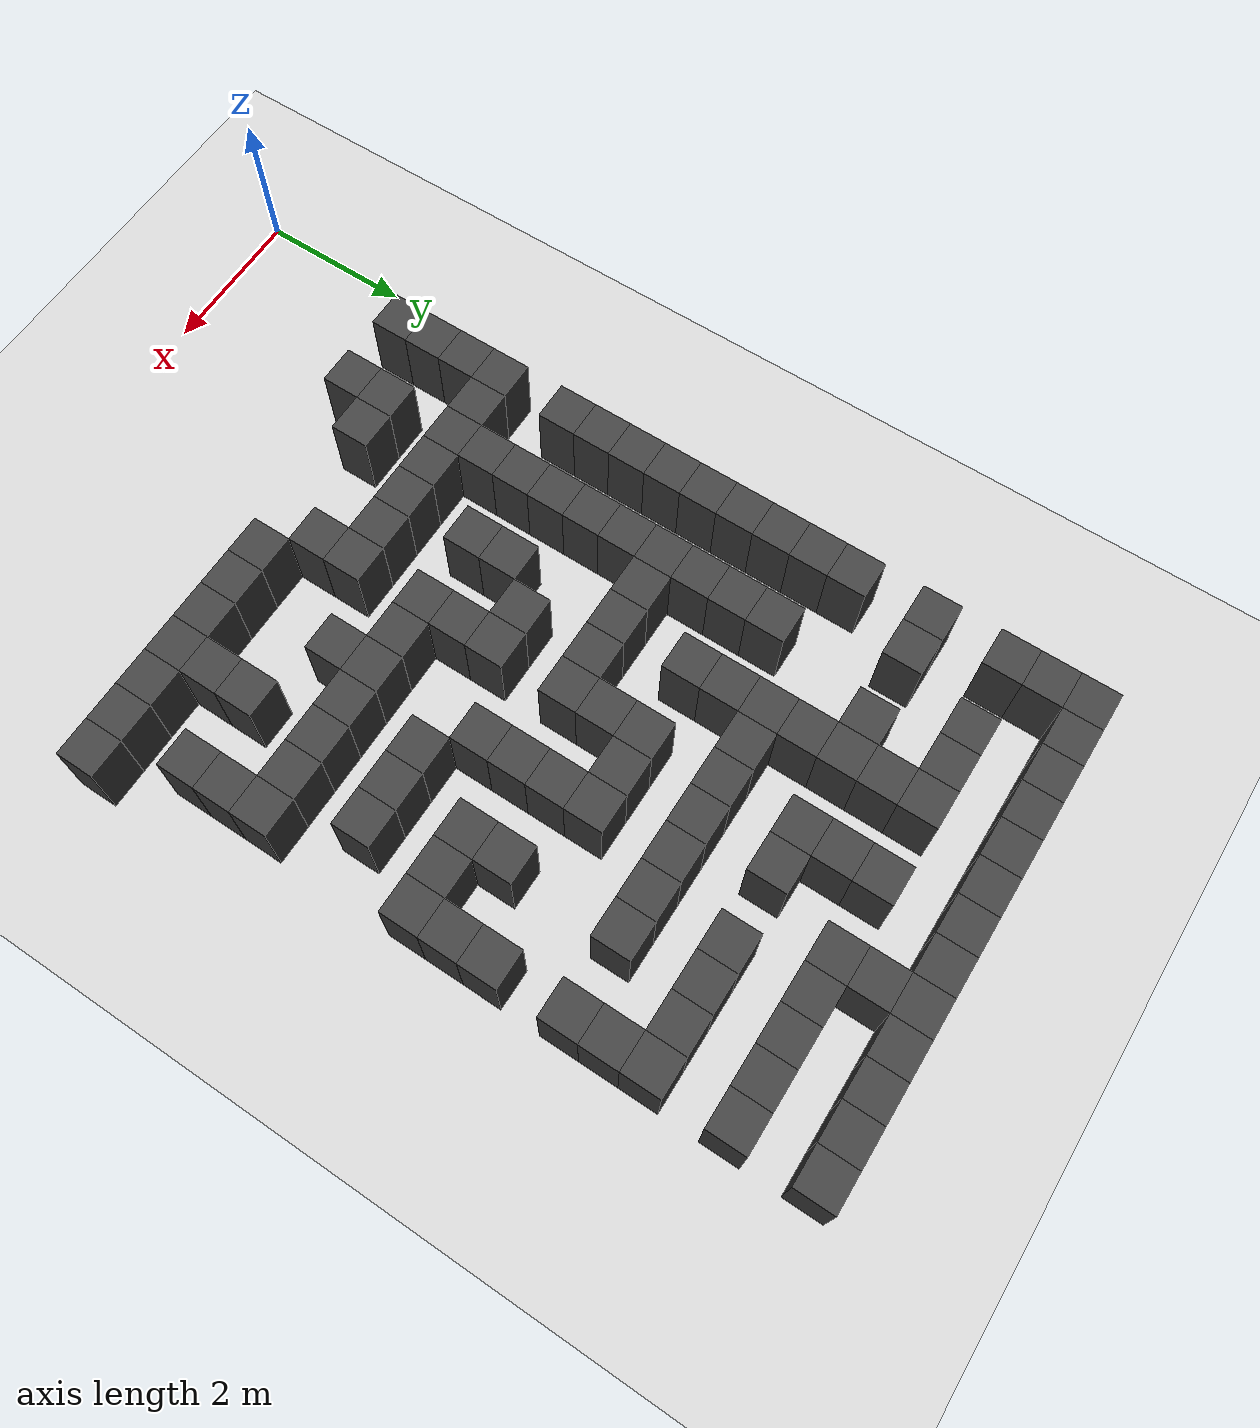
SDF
<sdf version="1.7">
 <world name="map_16603">
  <model name="ground_plane">
   <static>true</static>
   <link name="link">
    <collision name="collision">
     <geometry><plane><normal>0 0 1</normal><size>200 200</size></plane></geometry>
    </collision>
    <visual name="visual">
     <geometry><plane><normal>0 0 1</normal><size>200 200</size></plane></geometry>
     <material><ambient>0.8 0.8 0.8 1</ambient><diffuse>0.8 0.8 0.8 1</diffuse></material>
    </visual>
   </link>
  </model>
  <model name="maze_environment">
   <static>true</static>
   <link name="wall_26">
    <pose>0.750 12.250 0.500 0 0 0</pose>
    <collision name="col"><geometry><box><size>0.5 0.5 1.0</size></box></geometry></collision>
    <visual name="vis">
     <geometry><box><size>0.5 0.5 1.0</size></box></geometry>
     <material><ambient>0.15 0.15 0.15 1</ambient><diffuse>0.25 0.25 0.25 1</diffuse></material>
    </visual>
   </link>
   <link name="wall_27">
    <pose>1.250 12.250 0.500 0 0 0</pose>
    <collision name="col"><geometry><box><size>0.5 0.5 1.0</size></box></geometry></collision>
    <visual name="vis">
     <geometry><box><size>0.5 0.5 1.0</size></box></geometry>
     <material><ambient>0.15 0.15 0.15 1</ambient><diffuse>0.25 0.25 0.25 1</diffuse></material>
    </visual>
   </link>
   <link name="wall_28">
    <pose>1.750 12.250 0.500 0 0 0</pose>
    <collision name="col"><geometry><box><size>0.5 0.5 1.0</size></box></geometry></collision>
    <visual name="vis">
     <geometry><box><size>0.5 0.5 1.0</size></box></geometry>
     <material><ambient>0.15 0.15 0.15 1</ambient><diffuse>0.25 0.25 0.25 1</diffuse></material>
    </visual>
   </link>
   <link name="wall_29">
    <pose>2.250 12.250 0.500 0 0 0</pose>
    <collision name="col"><geometry><box><size>0.5 0.5 1.0</size></box></geometry></collision>
    <visual name="vis">
     <geometry><box><size>0.5 0.5 1.0</size></box></geometry>
     <material><ambient>0.15 0.15 0.15 1</ambient><diffuse>0.25 0.25 0.25 1</diffuse></material>
    </visual>
   </link>
   <link name="wall_30">
    <pose>2.750 12.250 0.500 0 0 0</pose>
    <collision name="col"><geometry><box><size>0.5 0.5 1.0</size></box></geometry></collision>
    <visual name="vis">
     <geometry><box><size>0.5 0.5 1.0</size></box></geometry>
     <material><ambient>0.15 0.15 0.15 1</ambient><diffuse>0.25 0.25 0.25 1</diffuse></material>
    </visual>
   </link>
   <link name="wall_31">
    <pose>3.250 12.250 0.500 0 0 0</pose>
    <collision name="col"><geometry><box><size>0.5 0.5 1.0</size></box></geometry></collision>
    <visual name="vis">
     <geometry><box><size>0.5 0.5 1.0</size></box></geometry>
     <material><ambient>0.15 0.15 0.15 1</ambient><diffuse>0.25 0.25 0.25 1</diffuse></material>
    </visual>
   </link>
   <link name="wall_32">
    <pose>3.750 12.250 0.500 0 0 0</pose>
    <collision name="col"><geometry><box><size>0.5 0.5 1.0</size></box></geometry></collision>
    <visual name="vis">
     <geometry><box><size>0.5 0.5 1.0</size></box></geometry>
     <material><ambient>0.15 0.15 0.15 1</ambient><diffuse>0.25 0.25 0.25 1</diffuse></material>
    </visual>
   </link>
   <link name="wall_33">
    <pose>4.250 12.250 0.500 0 0 0</pose>
    <collision name="col"><geometry><box><size>0.5 0.5 1.0</size></box></geometry></collision>
    <visual name="vis">
     <geometry><box><size>0.5 0.5 1.0</size></box></geometry>
     <material><ambient>0.15 0.15 0.15 1</ambient><diffuse>0.25 0.25 0.25 1</diffuse></material>
    </visual>
   </link>
   <link name="wall_34">
    <pose>4.750 12.250 0.500 0 0 0</pose>
    <collision name="col"><geometry><box><size>0.5 0.5 1.0</size></box></geometry></collision>
    <visual name="vis">
     <geometry><box><size>0.5 0.5 1.0</size></box></geometry>
     <material><ambient>0.15 0.15 0.15 1</ambient><diffuse>0.25 0.25 0.25 1</diffuse></material>
    </visual>
   </link>
   <link name="wall_35">
    <pose>5.250 12.250 0.500 0 0 0</pose>
    <collision name="col"><geometry><box><size>0.5 0.5 1.0</size></box></geometry></collision>
    <visual name="vis">
     <geometry><box><size>0.5 0.5 1.0</size></box></geometry>
     <material><ambient>0.15 0.15 0.15 1</ambient><diffuse>0.25 0.25 0.25 1</diffuse></material>
    </visual>
   </link>
   <link name="wall_36">
    <pose>5.750 12.250 0.500 0 0 0</pose>
    <collision name="col"><geometry><box><size>0.5 0.5 1.0</size></box></geometry></collision>
    <visual name="vis">
     <geometry><box><size>0.5 0.5 1.0</size></box></geometry>
     <material><ambient>0.15 0.15 0.15 1</ambient><diffuse>0.25 0.25 0.25 1</diffuse></material>
    </visual>
   </link>
   <link name="wall_37">
    <pose>6.250 12.250 0.500 0 0 0</pose>
    <collision name="col"><geometry><box><size>0.5 0.5 1.0</size></box></geometry></collision>
    <visual name="vis">
     <geometry><box><size>0.5 0.5 1.0</size></box></geometry>
     <material><ambient>0.15 0.15 0.15 1</ambient><diffuse>0.25 0.25 0.25 1</diffuse></material>
    </visual>
   </link>
   <link name="wall_38">
    <pose>6.750 12.250 0.500 0 0 0</pose>
    <collision name="col"><geometry><box><size>0.5 0.5 1.0</size></box></geometry></collision>
    <visual name="vis">
     <geometry><box><size>0.5 0.5 1.0</size></box></geometry>
     <material><ambient>0.15 0.15 0.15 1</ambient><diffuse>0.25 0.25 0.25 1</diffuse></material>
    </visual>
   </link>
   <link name="wall_54">
    <pose>0.750 11.750 0.500 0 0 0</pose>
    <collision name="col"><geometry><box><size>0.5 0.5 1.0</size></box></geometry></collision>
    <visual name="vis">
     <geometry><box><size>0.5 0.5 1.0</size></box></geometry>
     <material><ambient>0.15 0.15 0.15 1</ambient><diffuse>0.25 0.25 0.25 1</diffuse></material>
    </visual>
   </link>
   <link name="wall_55">
    <pose>4.750 11.750 0.500 0 0 0</pose>
    <collision name="col"><geometry><box><size>0.5 0.5 1.0</size></box></geometry></collision>
    <visual name="vis">
     <geometry><box><size>0.5 0.5 1.0</size></box></geometry>
     <material><ambient>0.15 0.15 0.15 1</ambient><diffuse>0.25 0.25 0.25 1</diffuse></material>
    </visual>
   </link>
   <link name="wall_75">
    <pose>0.750 11.250 0.500 0 0 0</pose>
    <collision name="col"><geometry><box><size>0.5 0.5 1.0</size></box></geometry></collision>
    <visual name="vis">
     <geometry><box><size>0.5 0.5 1.0</size></box></geometry>
     <material><ambient>0.15 0.15 0.15 1</ambient><diffuse>0.25 0.25 0.25 1</diffuse></material>
    </visual>
   </link>
   <link name="wall_76">
    <pose>1.750 11.250 0.500 0 0 0</pose>
    <collision name="col"><geometry><box><size>0.5 0.5 1.0</size></box></geometry></collision>
    <visual name="vis">
     <geometry><box><size>0.5 0.5 1.0</size></box></geometry>
     <material><ambient>0.15 0.15 0.15 1</ambient><diffuse>0.25 0.25 0.25 1</diffuse></material>
    </visual>
   </link>
   <link name="wall_77">
    <pose>2.250 11.250 0.500 0 0 0</pose>
    <collision name="col"><geometry><box><size>0.5 0.5 1.0</size></box></geometry></collision>
    <visual name="vis">
     <geometry><box><size>0.5 0.5 1.0</size></box></geometry>
     <material><ambient>0.15 0.15 0.15 1</ambient><diffuse>0.25 0.25 0.25 1</diffuse></material>
    </visual>
   </link>
   <link name="wall_78">
    <pose>2.750 11.250 0.500 0 0 0</pose>
    <collision name="col"><geometry><box><size>0.5 0.5 1.0</size></box></geometry></collision>
    <visual name="vis">
     <geometry><box><size>0.5 0.5 1.0</size></box></geometry>
     <material><ambient>0.15 0.15 0.15 1</ambient><diffuse>0.25 0.25 0.25 1</diffuse></material>
    </visual>
   </link>
   <link name="wall_79">
    <pose>3.750 11.250 0.500 0 0 0</pose>
    <collision name="col"><geometry><box><size>0.5 0.5 1.0</size></box></geometry></collision>
    <visual name="vis">
     <geometry><box><size>0.5 0.5 1.0</size></box></geometry>
     <material><ambient>0.15 0.15 0.15 1</ambient><diffuse>0.25 0.25 0.25 1</diffuse></material>
    </visual>
   </link>
   <link name="wall_80">
    <pose>4.750 11.250 0.500 0 0 0</pose>
    <collision name="col"><geometry><box><size>0.5 0.5 1.0</size></box></geometry></collision>
    <visual name="vis">
     <geometry><box><size>0.5 0.5 1.0</size></box></geometry>
     <material><ambient>0.15 0.15 0.15 1</ambient><diffuse>0.25 0.25 0.25 1</diffuse></material>
    </visual>
   </link>
   <link name="wall_81">
    <pose>5.250 11.250 0.500 0 0 0</pose>
    <collision name="col"><geometry><box><size>0.5 0.5 1.0</size></box></geometry></collision>
    <visual name="vis">
     <geometry><box><size>0.5 0.5 1.0</size></box></geometry>
     <material><ambient>0.15 0.15 0.15 1</ambient><diffuse>0.25 0.25 0.25 1</diffuse></material>
    </visual>
   </link>
   <link name="wall_82">
    <pose>5.750 11.250 0.500 0 0 0</pose>
    <collision name="col"><geometry><box><size>0.5 0.5 1.0</size></box></geometry></collision>
    <visual name="vis">
     <geometry><box><size>0.5 0.5 1.0</size></box></geometry>
     <material><ambient>0.15 0.15 0.15 1</ambient><diffuse>0.25 0.25 0.25 1</diffuse></material>
    </visual>
   </link>
   <link name="wall_83">
    <pose>6.250 11.250 0.500 0 0 0</pose>
    <collision name="col"><geometry><box><size>0.5 0.5 1.0</size></box></geometry></collision>
    <visual name="vis">
     <geometry><box><size>0.5 0.5 1.0</size></box></geometry>
     <material><ambient>0.15 0.15 0.15 1</ambient><diffuse>0.25 0.25 0.25 1</diffuse></material>
    </visual>
   </link>
   <link name="wall_84">
    <pose>6.750 11.250 0.500 0 0 0</pose>
    <collision name="col"><geometry><box><size>0.5 0.5 1.0</size></box></geometry></collision>
    <visual name="vis">
     <geometry><box><size>0.5 0.5 1.0</size></box></geometry>
     <material><ambient>0.15 0.15 0.15 1</ambient><diffuse>0.25 0.25 0.25 1</diffuse></material>
    </visual>
   </link>
   <link name="wall_101">
    <pose>2.750 10.750 0.500 0 0 0</pose>
    <collision name="col"><geometry><box><size>0.5 0.5 1.0</size></box></geometry></collision>
    <visual name="vis">
     <geometry><box><size>0.5 0.5 1.0</size></box></geometry>
     <material><ambient>0.15 0.15 0.15 1</ambient><diffuse>0.25 0.25 0.25 1</diffuse></material>
    </visual>
   </link>
   <link name="wall_102">
    <pose>3.750 10.750 0.500 0 0 0</pose>
    <collision name="col"><geometry><box><size>0.5 0.5 1.0</size></box></geometry></collision>
    <visual name="vis">
     <geometry><box><size>0.5 0.5 1.0</size></box></geometry>
     <material><ambient>0.15 0.15 0.15 1</ambient><diffuse>0.25 0.25 0.25 1</diffuse></material>
    </visual>
   </link>
   <link name="wall_120">
    <pose>0.750 10.250 0.500 0 0 0</pose>
    <collision name="col"><geometry><box><size>0.5 0.5 1.0</size></box></geometry></collision>
    <visual name="vis">
     <geometry><box><size>0.5 0.5 1.0</size></box></geometry>
     <material><ambient>0.15 0.15 0.15 1</ambient><diffuse>0.25 0.25 0.25 1</diffuse></material>
    </visual>
   </link>
   <link name="wall_121">
    <pose>1.250 10.250 0.500 0 0 0</pose>
    <collision name="col"><geometry><box><size>0.5 0.5 1.0</size></box></geometry></collision>
    <visual name="vis">
     <geometry><box><size>0.5 0.5 1.0</size></box></geometry>
     <material><ambient>0.15 0.15 0.15 1</ambient><diffuse>0.25 0.25 0.25 1</diffuse></material>
    </visual>
   </link>
   <link name="wall_122">
    <pose>2.250 10.250 0.500 0 0 0</pose>
    <collision name="col"><geometry><box><size>0.5 0.5 1.0</size></box></geometry></collision>
    <visual name="vis">
     <geometry><box><size>0.5 0.5 1.0</size></box></geometry>
     <material><ambient>0.15 0.15 0.15 1</ambient><diffuse>0.25 0.25 0.25 1</diffuse></material>
    </visual>
   </link>
   <link name="wall_123">
    <pose>2.750 10.250 0.500 0 0 0</pose>
    <collision name="col"><geometry><box><size>0.5 0.5 1.0</size></box></geometry></collision>
    <visual name="vis">
     <geometry><box><size>0.5 0.5 1.0</size></box></geometry>
     <material><ambient>0.15 0.15 0.15 1</ambient><diffuse>0.25 0.25 0.25 1</diffuse></material>
    </visual>
   </link>
   <link name="wall_124">
    <pose>3.750 10.250 0.500 0 0 0</pose>
    <collision name="col"><geometry><box><size>0.5 0.5 1.0</size></box></geometry></collision>
    <visual name="vis">
     <geometry><box><size>0.5 0.5 1.0</size></box></geometry>
     <material><ambient>0.15 0.15 0.15 1</ambient><diffuse>0.25 0.25 0.25 1</diffuse></material>
    </visual>
   </link>
   <link name="wall_125">
    <pose>4.250 10.250 0.500 0 0 0</pose>
    <collision name="col"><geometry><box><size>0.5 0.5 1.0</size></box></geometry></collision>
    <visual name="vis">
     <geometry><box><size>0.5 0.5 1.0</size></box></geometry>
     <material><ambient>0.15 0.15 0.15 1</ambient><diffuse>0.25 0.25 0.25 1</diffuse></material>
    </visual>
   </link>
   <link name="wall_126">
    <pose>5.250 10.250 0.500 0 0 0</pose>
    <collision name="col"><geometry><box><size>0.5 0.5 1.0</size></box></geometry></collision>
    <visual name="vis">
     <geometry><box><size>0.5 0.5 1.0</size></box></geometry>
     <material><ambient>0.15 0.15 0.15 1</ambient><diffuse>0.25 0.25 0.25 1</diffuse></material>
    </visual>
   </link>
   <link name="wall_127">
    <pose>5.750 10.250 0.500 0 0 0</pose>
    <collision name="col"><geometry><box><size>0.5 0.5 1.0</size></box></geometry></collision>
    <visual name="vis">
     <geometry><box><size>0.5 0.5 1.0</size></box></geometry>
     <material><ambient>0.15 0.15 0.15 1</ambient><diffuse>0.25 0.25 0.25 1</diffuse></material>
    </visual>
   </link>
   <link name="wall_128">
    <pose>6.250 10.250 0.500 0 0 0</pose>
    <collision name="col"><geometry><box><size>0.5 0.5 1.0</size></box></geometry></collision>
    <visual name="vis">
     <geometry><box><size>0.5 0.5 1.0</size></box></geometry>
     <material><ambient>0.15 0.15 0.15 1</ambient><diffuse>0.25 0.25 0.25 1</diffuse></material>
    </visual>
   </link>
   <link name="wall_129">
    <pose>6.750 10.250 0.500 0 0 0</pose>
    <collision name="col"><geometry><box><size>0.5 0.5 1.0</size></box></geometry></collision>
    <visual name="vis">
     <geometry><box><size>0.5 0.5 1.0</size></box></geometry>
     <material><ambient>0.15 0.15 0.15 1</ambient><diffuse>0.25 0.25 0.25 1</diffuse></material>
    </visual>
   </link>
   <link name="wall_146">
    <pose>2.750 9.750 0.500 0 0 0</pose>
    <collision name="col"><geometry><box><size>0.5 0.5 1.0</size></box></geometry></collision>
    <visual name="vis">
     <geometry><box><size>0.5 0.5 1.0</size></box></geometry>
     <material><ambient>0.15 0.15 0.15 1</ambient><diffuse>0.25 0.25 0.25 1</diffuse></material>
    </visual>
   </link>
   <link name="wall_147">
    <pose>6.750 9.750 0.500 0 0 0</pose>
    <collision name="col"><geometry><box><size>0.5 0.5 1.0</size></box></geometry></collision>
    <visual name="vis">
     <geometry><box><size>0.5 0.5 1.0</size></box></geometry>
     <material><ambient>0.15 0.15 0.15 1</ambient><diffuse>0.25 0.25 0.25 1</diffuse></material>
    </visual>
   </link>
   <link name="wall_168">
    <pose>0.750 9.250 0.500 0 0 0</pose>
    <collision name="col"><geometry><box><size>0.5 0.5 1.0</size></box></geometry></collision>
    <visual name="vis">
     <geometry><box><size>0.5 0.5 1.0</size></box></geometry>
     <material><ambient>0.15 0.15 0.15 1</ambient><diffuse>0.25 0.25 0.25 1</diffuse></material>
    </visual>
   </link>
   <link name="wall_169">
    <pose>2.750 9.250 0.500 0 0 0</pose>
    <collision name="col"><geometry><box><size>0.5 0.5 1.0</size></box></geometry></collision>
    <visual name="vis">
     <geometry><box><size>0.5 0.5 1.0</size></box></geometry>
     <material><ambient>0.15 0.15 0.15 1</ambient><diffuse>0.25 0.25 0.25 1</diffuse></material>
    </visual>
   </link>
   <link name="wall_170">
    <pose>3.250 9.250 0.500 0 0 0</pose>
    <collision name="col"><geometry><box><size>0.5 0.5 1.0</size></box></geometry></collision>
    <visual name="vis">
     <geometry><box><size>0.5 0.5 1.0</size></box></geometry>
     <material><ambient>0.15 0.15 0.15 1</ambient><diffuse>0.25 0.25 0.25 1</diffuse></material>
    </visual>
   </link>
   <link name="wall_171">
    <pose>3.750 9.250 0.500 0 0 0</pose>
    <collision name="col"><geometry><box><size>0.5 0.5 1.0</size></box></geometry></collision>
    <visual name="vis">
     <geometry><box><size>0.5 0.5 1.0</size></box></geometry>
     <material><ambient>0.15 0.15 0.15 1</ambient><diffuse>0.25 0.25 0.25 1</diffuse></material>
    </visual>
   </link>
   <link name="wall_172">
    <pose>4.250 9.250 0.500 0 0 0</pose>
    <collision name="col"><geometry><box><size>0.5 0.5 1.0</size></box></geometry></collision>
    <visual name="vis">
     <geometry><box><size>0.5 0.5 1.0</size></box></geometry>
     <material><ambient>0.15 0.15 0.15 1</ambient><diffuse>0.25 0.25 0.25 1</diffuse></material>
    </visual>
   </link>
   <link name="wall_173">
    <pose>4.750 9.250 0.500 0 0 0</pose>
    <collision name="col"><geometry><box><size>0.5 0.5 1.0</size></box></geometry></collision>
    <visual name="vis">
     <geometry><box><size>0.5 0.5 1.0</size></box></geometry>
     <material><ambient>0.15 0.15 0.15 1</ambient><diffuse>0.25 0.25 0.25 1</diffuse></material>
    </visual>
   </link>
   <link name="wall_174">
    <pose>5.250 9.250 0.500 0 0 0</pose>
    <collision name="col"><geometry><box><size>0.5 0.5 1.0</size></box></geometry></collision>
    <visual name="vis">
     <geometry><box><size>0.5 0.5 1.0</size></box></geometry>
     <material><ambient>0.15 0.15 0.15 1</ambient><diffuse>0.25 0.25 0.25 1</diffuse></material>
    </visual>
   </link>
   <link name="wall_175">
    <pose>5.750 9.250 0.500 0 0 0</pose>
    <collision name="col"><geometry><box><size>0.5 0.5 1.0</size></box></geometry></collision>
    <visual name="vis">
     <geometry><box><size>0.5 0.5 1.0</size></box></geometry>
     <material><ambient>0.15 0.15 0.15 1</ambient><diffuse>0.25 0.25 0.25 1</diffuse></material>
    </visual>
   </link>
   <link name="wall_176">
    <pose>6.750 9.250 0.500 0 0 0</pose>
    <collision name="col"><geometry><box><size>0.5 0.5 1.0</size></box></geometry></collision>
    <visual name="vis">
     <geometry><box><size>0.5 0.5 1.0</size></box></geometry>
     <material><ambient>0.15 0.15 0.15 1</ambient><diffuse>0.25 0.25 0.25 1</diffuse></material>
    </visual>
   </link>
   <link name="wall_193">
    <pose>0.750 8.750 0.500 0 0 0</pose>
    <collision name="col"><geometry><box><size>0.5 0.5 1.0</size></box></geometry></collision>
    <visual name="vis">
     <geometry><box><size>0.5 0.5 1.0</size></box></geometry>
     <material><ambient>0.15 0.15 0.15 1</ambient><diffuse>0.25 0.25 0.25 1</diffuse></material>
    </visual>
   </link>
   <link name="wall_194">
    <pose>1.750 8.750 0.500 0 0 0</pose>
    <collision name="col"><geometry><box><size>0.5 0.5 1.0</size></box></geometry></collision>
    <visual name="vis">
     <geometry><box><size>0.5 0.5 1.0</size></box></geometry>
     <material><ambient>0.15 0.15 0.15 1</ambient><diffuse>0.25 0.25 0.25 1</diffuse></material>
    </visual>
   </link>
   <link name="wall_195">
    <pose>2.750 8.750 0.500 0 0 0</pose>
    <collision name="col"><geometry><box><size>0.5 0.5 1.0</size></box></geometry></collision>
    <visual name="vis">
     <geometry><box><size>0.5 0.5 1.0</size></box></geometry>
     <material><ambient>0.15 0.15 0.15 1</ambient><diffuse>0.25 0.25 0.25 1</diffuse></material>
    </visual>
   </link>
   <link name="wall_216">
    <pose>0.750 8.250 0.500 0 0 0</pose>
    <collision name="col"><geometry><box><size>0.5 0.5 1.0</size></box></geometry></collision>
    <visual name="vis">
     <geometry><box><size>0.5 0.5 1.0</size></box></geometry>
     <material><ambient>0.15 0.15 0.15 1</ambient><diffuse>0.25 0.25 0.25 1</diffuse></material>
    </visual>
   </link>
   <link name="wall_217">
    <pose>1.750 8.250 0.500 0 0 0</pose>
    <collision name="col"><geometry><box><size>0.5 0.5 1.0</size></box></geometry></collision>
    <visual name="vis">
     <geometry><box><size>0.5 0.5 1.0</size></box></geometry>
     <material><ambient>0.15 0.15 0.15 1</ambient><diffuse>0.25 0.25 0.25 1</diffuse></material>
    </visual>
   </link>
   <link name="wall_218">
    <pose>2.750 8.250 0.500 0 0 0</pose>
    <collision name="col"><geometry><box><size>0.5 0.5 1.0</size></box></geometry></collision>
    <visual name="vis">
     <geometry><box><size>0.5 0.5 1.0</size></box></geometry>
     <material><ambient>0.15 0.15 0.15 1</ambient><diffuse>0.25 0.25 0.25 1</diffuse></material>
    </visual>
   </link>
   <link name="wall_219">
    <pose>3.750 8.250 0.500 0 0 0</pose>
    <collision name="col"><geometry><box><size>0.5 0.5 1.0</size></box></geometry></collision>
    <visual name="vis">
     <geometry><box><size>0.5 0.5 1.0</size></box></geometry>
     <material><ambient>0.15 0.15 0.15 1</ambient><diffuse>0.25 0.25 0.25 1</diffuse></material>
    </visual>
   </link>
   <link name="wall_220">
    <pose>4.250 8.250 0.500 0 0 0</pose>
    <collision name="col"><geometry><box><size>0.5 0.5 1.0</size></box></geometry></collision>
    <visual name="vis">
     <geometry><box><size>0.5 0.5 1.0</size></box></geometry>
     <material><ambient>0.15 0.15 0.15 1</ambient><diffuse>0.25 0.25 0.25 1</diffuse></material>
    </visual>
   </link>
   <link name="wall_221">
    <pose>4.750 8.250 0.500 0 0 0</pose>
    <collision name="col"><geometry><box><size>0.5 0.5 1.0</size></box></geometry></collision>
    <visual name="vis">
     <geometry><box><size>0.5 0.5 1.0</size></box></geometry>
     <material><ambient>0.15 0.15 0.15 1</ambient><diffuse>0.25 0.25 0.25 1</diffuse></material>
    </visual>
   </link>
   <link name="wall_222">
    <pose>6.750 8.250 0.500 0 0 0</pose>
    <collision name="col"><geometry><box><size>0.5 0.5 1.0</size></box></geometry></collision>
    <visual name="vis">
     <geometry><box><size>0.5 0.5 1.0</size></box></geometry>
     <material><ambient>0.15 0.15 0.15 1</ambient><diffuse>0.25 0.25 0.25 1</diffuse></material>
    </visual>
   </link>
   <link name="wall_237">
    <pose>0.750 7.750 0.500 0 0 0</pose>
    <collision name="col"><geometry><box><size>0.5 0.5 1.0</size></box></geometry></collision>
    <visual name="vis">
     <geometry><box><size>0.5 0.5 1.0</size></box></geometry>
     <material><ambient>0.15 0.15 0.15 1</ambient><diffuse>0.25 0.25 0.25 1</diffuse></material>
    </visual>
   </link>
   <link name="wall_238">
    <pose>1.750 7.750 0.500 0 0 0</pose>
    <collision name="col"><geometry><box><size>0.5 0.5 1.0</size></box></geometry></collision>
    <visual name="vis">
     <geometry><box><size>0.5 0.5 1.0</size></box></geometry>
     <material><ambient>0.15 0.15 0.15 1</ambient><diffuse>0.25 0.25 0.25 1</diffuse></material>
    </visual>
   </link>
   <link name="wall_239">
    <pose>3.750 7.750 0.500 0 0 0</pose>
    <collision name="col"><geometry><box><size>0.5 0.5 1.0</size></box></geometry></collision>
    <visual name="vis">
     <geometry><box><size>0.5 0.5 1.0</size></box></geometry>
     <material><ambient>0.15 0.15 0.15 1</ambient><diffuse>0.25 0.25 0.25 1</diffuse></material>
    </visual>
   </link>
   <link name="wall_240">
    <pose>4.750 7.750 0.500 0 0 0</pose>
    <collision name="col"><geometry><box><size>0.5 0.5 1.0</size></box></geometry></collision>
    <visual name="vis">
     <geometry><box><size>0.5 0.5 1.0</size></box></geometry>
     <material><ambient>0.15 0.15 0.15 1</ambient><diffuse>0.25 0.25 0.25 1</diffuse></material>
    </visual>
   </link>
   <link name="wall_241">
    <pose>5.750 7.750 0.500 0 0 0</pose>
    <collision name="col"><geometry><box><size>0.5 0.5 1.0</size></box></geometry></collision>
    <visual name="vis">
     <geometry><box><size>0.5 0.5 1.0</size></box></geometry>
     <material><ambient>0.15 0.15 0.15 1</ambient><diffuse>0.25 0.25 0.25 1</diffuse></material>
    </visual>
   </link>
   <link name="wall_242">
    <pose>6.750 7.750 0.500 0 0 0</pose>
    <collision name="col"><geometry><box><size>0.5 0.5 1.0</size></box></geometry></collision>
    <visual name="vis">
     <geometry><box><size>0.5 0.5 1.0</size></box></geometry>
     <material><ambient>0.15 0.15 0.15 1</ambient><diffuse>0.25 0.25 0.25 1</diffuse></material>
    </visual>
   </link>
   <link name="wall_266">
    <pose>0.750 7.250 0.500 0 0 0</pose>
    <collision name="col"><geometry><box><size>0.5 0.5 1.0</size></box></geometry></collision>
    <visual name="vis">
     <geometry><box><size>0.5 0.5 1.0</size></box></geometry>
     <material><ambient>0.15 0.15 0.15 1</ambient><diffuse>0.25 0.25 0.25 1</diffuse></material>
    </visual>
   </link>
   <link name="wall_267">
    <pose>1.750 7.250 0.500 0 0 0</pose>
    <collision name="col"><geometry><box><size>0.5 0.5 1.0</size></box></geometry></collision>
    <visual name="vis">
     <geometry><box><size>0.5 0.5 1.0</size></box></geometry>
     <material><ambient>0.15 0.15 0.15 1</ambient><diffuse>0.25 0.25 0.25 1</diffuse></material>
    </visual>
   </link>
   <link name="wall_268">
    <pose>2.250 7.250 0.500 0 0 0</pose>
    <collision name="col"><geometry><box><size>0.5 0.5 1.0</size></box></geometry></collision>
    <visual name="vis">
     <geometry><box><size>0.5 0.5 1.0</size></box></geometry>
     <material><ambient>0.15 0.15 0.15 1</ambient><diffuse>0.25 0.25 0.25 1</diffuse></material>
    </visual>
   </link>
   <link name="wall_269">
    <pose>2.750 7.250 0.500 0 0 0</pose>
    <collision name="col"><geometry><box><size>0.5 0.5 1.0</size></box></geometry></collision>
    <visual name="vis">
     <geometry><box><size>0.5 0.5 1.0</size></box></geometry>
     <material><ambient>0.15 0.15 0.15 1</ambient><diffuse>0.25 0.25 0.25 1</diffuse></material>
    </visual>
   </link>
   <link name="wall_270">
    <pose>3.250 7.250 0.500 0 0 0</pose>
    <collision name="col"><geometry><box><size>0.5 0.5 1.0</size></box></geometry></collision>
    <visual name="vis">
     <geometry><box><size>0.5 0.5 1.0</size></box></geometry>
     <material><ambient>0.15 0.15 0.15 1</ambient><diffuse>0.25 0.25 0.25 1</diffuse></material>
    </visual>
   </link>
   <link name="wall_271">
    <pose>3.750 7.250 0.500 0 0 0</pose>
    <collision name="col"><geometry><box><size>0.5 0.5 1.0</size></box></geometry></collision>
    <visual name="vis">
     <geometry><box><size>0.5 0.5 1.0</size></box></geometry>
     <material><ambient>0.15 0.15 0.15 1</ambient><diffuse>0.25 0.25 0.25 1</diffuse></material>
    </visual>
   </link>
   <link name="wall_272">
    <pose>4.750 7.250 0.500 0 0 0</pose>
    <collision name="col"><geometry><box><size>0.5 0.5 1.0</size></box></geometry></collision>
    <visual name="vis">
     <geometry><box><size>0.5 0.5 1.0</size></box></geometry>
     <material><ambient>0.15 0.15 0.15 1</ambient><diffuse>0.25 0.25 0.25 1</diffuse></material>
    </visual>
   </link>
   <link name="wall_273">
    <pose>5.750 7.250 0.500 0 0 0</pose>
    <collision name="col"><geometry><box><size>0.5 0.5 1.0</size></box></geometry></collision>
    <visual name="vis">
     <geometry><box><size>0.5 0.5 1.0</size></box></geometry>
     <material><ambient>0.15 0.15 0.15 1</ambient><diffuse>0.25 0.25 0.25 1</diffuse></material>
    </visual>
   </link>
   <link name="wall_274">
    <pose>6.250 7.250 0.500 0 0 0</pose>
    <collision name="col"><geometry><box><size>0.5 0.5 1.0</size></box></geometry></collision>
    <visual name="vis">
     <geometry><box><size>0.5 0.5 1.0</size></box></geometry>
     <material><ambient>0.15 0.15 0.15 1</ambient><diffuse>0.25 0.25 0.25 1</diffuse></material>
    </visual>
   </link>
   <link name="wall_275">
    <pose>6.750 7.250 0.500 0 0 0</pose>
    <collision name="col"><geometry><box><size>0.5 0.5 1.0</size></box></geometry></collision>
    <visual name="vis">
     <geometry><box><size>0.5 0.5 1.0</size></box></geometry>
     <material><ambient>0.15 0.15 0.15 1</ambient><diffuse>0.25 0.25 0.25 1</diffuse></material>
    </visual>
   </link>
   <link name="wall_292">
    <pose>0.750 6.750 0.500 0 0 0</pose>
    <collision name="col"><geometry><box><size>0.5 0.5 1.0</size></box></geometry></collision>
    <visual name="vis">
     <geometry><box><size>0.5 0.5 1.0</size></box></geometry>
     <material><ambient>0.15 0.15 0.15 1</ambient><diffuse>0.25 0.25 0.25 1</diffuse></material>
    </visual>
   </link>
   <link name="wall_293">
    <pose>1.750 6.750 0.500 0 0 0</pose>
    <collision name="col"><geometry><box><size>0.5 0.5 1.0</size></box></geometry></collision>
    <visual name="vis">
     <geometry><box><size>0.5 0.5 1.0</size></box></geometry>
     <material><ambient>0.15 0.15 0.15 1</ambient><diffuse>0.25 0.25 0.25 1</diffuse></material>
    </visual>
   </link>
   <link name="wall_294">
    <pose>4.750 6.750 0.500 0 0 0</pose>
    <collision name="col"><geometry><box><size>0.5 0.5 1.0</size></box></geometry></collision>
    <visual name="vis">
     <geometry><box><size>0.5 0.5 1.0</size></box></geometry>
     <material><ambient>0.15 0.15 0.15 1</ambient><diffuse>0.25 0.25 0.25 1</diffuse></material>
    </visual>
   </link>
   <link name="wall_316">
    <pose>0.750 6.250 0.500 0 0 0</pose>
    <collision name="col"><geometry><box><size>0.5 0.5 1.0</size></box></geometry></collision>
    <visual name="vis">
     <geometry><box><size>0.5 0.5 1.0</size></box></geometry>
     <material><ambient>0.15 0.15 0.15 1</ambient><diffuse>0.25 0.25 0.25 1</diffuse></material>
    </visual>
   </link>
   <link name="wall_317">
    <pose>1.750 6.250 0.500 0 0 0</pose>
    <collision name="col"><geometry><box><size>0.5 0.5 1.0</size></box></geometry></collision>
    <visual name="vis">
     <geometry><box><size>0.5 0.5 1.0</size></box></geometry>
     <material><ambient>0.15 0.15 0.15 1</ambient><diffuse>0.25 0.25 0.25 1</diffuse></material>
    </visual>
   </link>
   <link name="wall_318">
    <pose>3.250 6.250 0.500 0 0 0</pose>
    <collision name="col"><geometry><box><size>0.5 0.5 1.0</size></box></geometry></collision>
    <visual name="vis">
     <geometry><box><size>0.5 0.5 1.0</size></box></geometry>
     <material><ambient>0.15 0.15 0.15 1</ambient><diffuse>0.25 0.25 0.25 1</diffuse></material>
    </visual>
   </link>
   <link name="wall_319">
    <pose>3.750 6.250 0.500 0 0 0</pose>
    <collision name="col"><geometry><box><size>0.5 0.5 1.0</size></box></geometry></collision>
    <visual name="vis">
     <geometry><box><size>0.5 0.5 1.0</size></box></geometry>
     <material><ambient>0.15 0.15 0.15 1</ambient><diffuse>0.25 0.25 0.25 1</diffuse></material>
    </visual>
   </link>
   <link name="wall_320">
    <pose>5.250 6.250 0.500 0 0 0</pose>
    <collision name="col"><geometry><box><size>0.5 0.5 1.0</size></box></geometry></collision>
    <visual name="vis">
     <geometry><box><size>0.5 0.5 1.0</size></box></geometry>
     <material><ambient>0.15 0.15 0.15 1</ambient><diffuse>0.25 0.25 0.25 1</diffuse></material>
    </visual>
   </link>
   <link name="wall_321">
    <pose>5.750 6.250 0.500 0 0 0</pose>
    <collision name="col"><geometry><box><size>0.5 0.5 1.0</size></box></geometry></collision>
    <visual name="vis">
     <geometry><box><size>0.5 0.5 1.0</size></box></geometry>
     <material><ambient>0.15 0.15 0.15 1</ambient><diffuse>0.25 0.25 0.25 1</diffuse></material>
    </visual>
   </link>
   <link name="wall_322">
    <pose>6.250 6.250 0.500 0 0 0</pose>
    <collision name="col"><geometry><box><size>0.5 0.5 1.0</size></box></geometry></collision>
    <visual name="vis">
     <geometry><box><size>0.5 0.5 1.0</size></box></geometry>
     <material><ambient>0.15 0.15 0.15 1</ambient><diffuse>0.25 0.25 0.25 1</diffuse></material>
    </visual>
   </link>
   <link name="wall_336">
    <pose>0.750 5.750 0.500 0 0 0</pose>
    <collision name="col"><geometry><box><size>0.5 0.5 1.0</size></box></geometry></collision>
    <visual name="vis">
     <geometry><box><size>0.5 0.5 1.0</size></box></geometry>
     <material><ambient>0.15 0.15 0.15 1</ambient><diffuse>0.25 0.25 0.25 1</diffuse></material>
    </visual>
   </link>
   <link name="wall_337">
    <pose>1.750 5.750 0.500 0 0 0</pose>
    <collision name="col"><geometry><box><size>0.5 0.5 1.0</size></box></geometry></collision>
    <visual name="vis">
     <geometry><box><size>0.5 0.5 1.0</size></box></geometry>
     <material><ambient>0.15 0.15 0.15 1</ambient><diffuse>0.25 0.25 0.25 1</diffuse></material>
    </visual>
   </link>
   <link name="wall_338">
    <pose>2.750 5.750 0.500 0 0 0</pose>
    <collision name="col"><geometry><box><size>0.5 0.5 1.0</size></box></geometry></collision>
    <visual name="vis">
     <geometry><box><size>0.5 0.5 1.0</size></box></geometry>
     <material><ambient>0.15 0.15 0.15 1</ambient><diffuse>0.25 0.25 0.25 1</diffuse></material>
    </visual>
   </link>
   <link name="wall_339">
    <pose>3.750 5.750 0.500 0 0 0</pose>
    <collision name="col"><geometry><box><size>0.5 0.5 1.0</size></box></geometry></collision>
    <visual name="vis">
     <geometry><box><size>0.5 0.5 1.0</size></box></geometry>
     <material><ambient>0.15 0.15 0.15 1</ambient><diffuse>0.25 0.25 0.25 1</diffuse></material>
    </visual>
   </link>
   <link name="wall_365">
    <pose>0.750 5.250 0.500 0 0 0</pose>
    <collision name="col"><geometry><box><size>0.5 0.5 1.0</size></box></geometry></collision>
    <visual name="vis">
     <geometry><box><size>0.5 0.5 1.0</size></box></geometry>
     <material><ambient>0.15 0.15 0.15 1</ambient><diffuse>0.25 0.25 0.25 1</diffuse></material>
    </visual>
   </link>
   <link name="wall_366">
    <pose>1.750 5.250 0.500 0 0 0</pose>
    <collision name="col"><geometry><box><size>0.5 0.5 1.0</size></box></geometry></collision>
    <visual name="vis">
     <geometry><box><size>0.5 0.5 1.0</size></box></geometry>
     <material><ambient>0.15 0.15 0.15 1</ambient><diffuse>0.25 0.25 0.25 1</diffuse></material>
    </visual>
   </link>
   <link name="wall_367">
    <pose>2.750 5.250 0.500 0 0 0</pose>
    <collision name="col"><geometry><box><size>0.5 0.5 1.0</size></box></geometry></collision>
    <visual name="vis">
     <geometry><box><size>0.5 0.5 1.0</size></box></geometry>
     <material><ambient>0.15 0.15 0.15 1</ambient><diffuse>0.25 0.25 0.25 1</diffuse></material>
    </visual>
   </link>
   <link name="wall_368">
    <pose>3.750 5.250 0.500 0 0 0</pose>
    <collision name="col"><geometry><box><size>0.5 0.5 1.0</size></box></geometry></collision>
    <visual name="vis">
     <geometry><box><size>0.5 0.5 1.0</size></box></geometry>
     <material><ambient>0.15 0.15 0.15 1</ambient><diffuse>0.25 0.25 0.25 1</diffuse></material>
    </visual>
   </link>
   <link name="wall_369">
    <pose>4.250 5.250 0.500 0 0 0</pose>
    <collision name="col"><geometry><box><size>0.5 0.5 1.0</size></box></geometry></collision>
    <visual name="vis">
     <geometry><box><size>0.5 0.5 1.0</size></box></geometry>
     <material><ambient>0.15 0.15 0.15 1</ambient><diffuse>0.25 0.25 0.25 1</diffuse></material>
    </visual>
   </link>
   <link name="wall_370">
    <pose>4.750 5.250 0.500 0 0 0</pose>
    <collision name="col"><geometry><box><size>0.5 0.5 1.0</size></box></geometry></collision>
    <visual name="vis">
     <geometry><box><size>0.5 0.5 1.0</size></box></geometry>
     <material><ambient>0.15 0.15 0.15 1</ambient><diffuse>0.25 0.25 0.25 1</diffuse></material>
    </visual>
   </link>
   <link name="wall_371">
    <pose>5.250 5.250 0.500 0 0 0</pose>
    <collision name="col"><geometry><box><size>0.5 0.5 1.0</size></box></geometry></collision>
    <visual name="vis">
     <geometry><box><size>0.5 0.5 1.0</size></box></geometry>
     <material><ambient>0.15 0.15 0.15 1</ambient><diffuse>0.25 0.25 0.25 1</diffuse></material>
    </visual>
   </link>
   <link name="wall_372">
    <pose>5.750 5.250 0.500 0 0 0</pose>
    <collision name="col"><geometry><box><size>0.5 0.5 1.0</size></box></geometry></collision>
    <visual name="vis">
     <geometry><box><size>0.5 0.5 1.0</size></box></geometry>
     <material><ambient>0.15 0.15 0.15 1</ambient><diffuse>0.25 0.25 0.25 1</diffuse></material>
    </visual>
   </link>
   <link name="wall_373">
    <pose>6.250 5.250 0.500 0 0 0</pose>
    <collision name="col"><geometry><box><size>0.5 0.5 1.0</size></box></geometry></collision>
    <visual name="vis">
     <geometry><box><size>0.5 0.5 1.0</size></box></geometry>
     <material><ambient>0.15 0.15 0.15 1</ambient><diffuse>0.25 0.25 0.25 1</diffuse></material>
    </visual>
   </link>
   <link name="wall_374">
    <pose>6.750 5.250 0.500 0 0 0</pose>
    <collision name="col"><geometry><box><size>0.5 0.5 1.0</size></box></geometry></collision>
    <visual name="vis">
     <geometry><box><size>0.5 0.5 1.0</size></box></geometry>
     <material><ambient>0.15 0.15 0.15 1</ambient><diffuse>0.25 0.25 0.25 1</diffuse></material>
    </visual>
   </link>
   <link name="wall_387">
    <pose>1.750 4.750 0.500 0 0 0</pose>
    <collision name="col"><geometry><box><size>0.5 0.5 1.0</size></box></geometry></collision>
    <visual name="vis">
     <geometry><box><size>0.5 0.5 1.0</size></box></geometry>
     <material><ambient>0.15 0.15 0.15 1</ambient><diffuse>0.25 0.25 0.25 1</diffuse></material>
    </visual>
   </link>
   <link name="wall_388">
    <pose>4.750 4.750 0.500 0 0 0</pose>
    <collision name="col"><geometry><box><size>0.5 0.5 1.0</size></box></geometry></collision>
    <visual name="vis">
     <geometry><box><size>0.5 0.5 1.0</size></box></geometry>
     <material><ambient>0.15 0.15 0.15 1</ambient><diffuse>0.25 0.25 0.25 1</diffuse></material>
    </visual>
   </link>
   <link name="wall_389">
    <pose>6.750 4.750 0.500 0 0 0</pose>
    <collision name="col"><geometry><box><size>0.5 0.5 1.0</size></box></geometry></collision>
    <visual name="vis">
     <geometry><box><size>0.5 0.5 1.0</size></box></geometry>
     <material><ambient>0.15 0.15 0.15 1</ambient><diffuse>0.25 0.25 0.25 1</diffuse></material>
    </visual>
   </link>
   <link name="wall_410">
    <pose>0.750 4.250 0.500 0 0 0</pose>
    <collision name="col"><geometry><box><size>0.5 0.5 1.0</size></box></geometry></collision>
    <visual name="vis">
     <geometry><box><size>0.5 0.5 1.0</size></box></geometry>
     <material><ambient>0.15 0.15 0.15 1</ambient><diffuse>0.25 0.25 0.25 1</diffuse></material>
    </visual>
   </link>
   <link name="wall_411">
    <pose>1.250 4.250 0.500 0 0 0</pose>
    <collision name="col"><geometry><box><size>0.5 0.5 1.0</size></box></geometry></collision>
    <visual name="vis">
     <geometry><box><size>0.5 0.5 1.0</size></box></geometry>
     <material><ambient>0.15 0.15 0.15 1</ambient><diffuse>0.25 0.25 0.25 1</diffuse></material>
    </visual>
   </link>
   <link name="wall_412">
    <pose>1.750 4.250 0.500 0 0 0</pose>
    <collision name="col"><geometry><box><size>0.5 0.5 1.0</size></box></geometry></collision>
    <visual name="vis">
     <geometry><box><size>0.5 0.5 1.0</size></box></geometry>
     <material><ambient>0.15 0.15 0.15 1</ambient><diffuse>0.25 0.25 0.25 1</diffuse></material>
    </visual>
   </link>
   <link name="wall_413">
    <pose>2.250 4.250 0.500 0 0 0</pose>
    <collision name="col"><geometry><box><size>0.5 0.5 1.0</size></box></geometry></collision>
    <visual name="vis">
     <geometry><box><size>0.5 0.5 1.0</size></box></geometry>
     <material><ambient>0.15 0.15 0.15 1</ambient><diffuse>0.25 0.25 0.25 1</diffuse></material>
    </visual>
   </link>
   <link name="wall_414">
    <pose>2.750 4.250 0.500 0 0 0</pose>
    <collision name="col"><geometry><box><size>0.5 0.5 1.0</size></box></geometry></collision>
    <visual name="vis">
     <geometry><box><size>0.5 0.5 1.0</size></box></geometry>
     <material><ambient>0.15 0.15 0.15 1</ambient><diffuse>0.25 0.25 0.25 1</diffuse></material>
    </visual>
   </link>
   <link name="wall_415">
    <pose>3.250 4.250 0.500 0 0 0</pose>
    <collision name="col"><geometry><box><size>0.5 0.5 1.0</size></box></geometry></collision>
    <visual name="vis">
     <geometry><box><size>0.5 0.5 1.0</size></box></geometry>
     <material><ambient>0.15 0.15 0.15 1</ambient><diffuse>0.25 0.25 0.25 1</diffuse></material>
    </visual>
   </link>
   <link name="wall_416">
    <pose>3.750 4.250 0.500 0 0 0</pose>
    <collision name="col"><geometry><box><size>0.5 0.5 1.0</size></box></geometry></collision>
    <visual name="vis">
     <geometry><box><size>0.5 0.5 1.0</size></box></geometry>
     <material><ambient>0.15 0.15 0.15 1</ambient><diffuse>0.25 0.25 0.25 1</diffuse></material>
    </visual>
   </link>
   <link name="wall_417">
    <pose>5.750 4.250 0.500 0 0 0</pose>
    <collision name="col"><geometry><box><size>0.5 0.5 1.0</size></box></geometry></collision>
    <visual name="vis">
     <geometry><box><size>0.5 0.5 1.0</size></box></geometry>
     <material><ambient>0.15 0.15 0.15 1</ambient><diffuse>0.25 0.25 0.25 1</diffuse></material>
    </visual>
   </link>
   <link name="wall_418">
    <pose>6.750 4.250 0.500 0 0 0</pose>
    <collision name="col"><geometry><box><size>0.5 0.5 1.0</size></box></geometry></collision>
    <visual name="vis">
     <geometry><box><size>0.5 0.5 1.0</size></box></geometry>
     <material><ambient>0.15 0.15 0.15 1</ambient><diffuse>0.25 0.25 0.25 1</diffuse></material>
    </visual>
   </link>
   <link name="wall_431">
    <pose>0.750 3.750 0.500 0 0 0</pose>
    <collision name="col"><geometry><box><size>0.5 0.5 1.0</size></box></geometry></collision>
    <visual name="vis">
     <geometry><box><size>0.5 0.5 1.0</size></box></geometry>
     <material><ambient>0.15 0.15 0.15 1</ambient><diffuse>0.25 0.25 0.25 1</diffuse></material>
    </visual>
   </link>
   <link name="wall_432">
    <pose>3.750 3.750 0.500 0 0 0</pose>
    <collision name="col"><geometry><box><size>0.5 0.5 1.0</size></box></geometry></collision>
    <visual name="vis">
     <geometry><box><size>0.5 0.5 1.0</size></box></geometry>
     <material><ambient>0.15 0.15 0.15 1</ambient><diffuse>0.25 0.25 0.25 1</diffuse></material>
    </visual>
   </link>
   <link name="wall_433">
    <pose>5.750 3.750 0.500 0 0 0</pose>
    <collision name="col"><geometry><box><size>0.5 0.5 1.0</size></box></geometry></collision>
    <visual name="vis">
     <geometry><box><size>0.5 0.5 1.0</size></box></geometry>
     <material><ambient>0.15 0.15 0.15 1</ambient><diffuse>0.25 0.25 0.25 1</diffuse></material>
    </visual>
   </link>
   <link name="wall_457">
    <pose>0.750 3.250 0.500 0 0 0</pose>
    <collision name="col"><geometry><box><size>0.5 0.5 1.0</size></box></geometry></collision>
    <visual name="vis">
     <geometry><box><size>0.5 0.5 1.0</size></box></geometry>
     <material><ambient>0.15 0.15 0.15 1</ambient><diffuse>0.25 0.25 0.25 1</diffuse></material>
    </visual>
   </link>
   <link name="wall_458">
    <pose>1.750 3.250 0.500 0 0 0</pose>
    <collision name="col"><geometry><box><size>0.5 0.5 1.0</size></box></geometry></collision>
    <visual name="vis">
     <geometry><box><size>0.5 0.5 1.0</size></box></geometry>
     <material><ambient>0.15 0.15 0.15 1</ambient><diffuse>0.25 0.25 0.25 1</diffuse></material>
    </visual>
   </link>
   <link name="wall_459">
    <pose>2.250 3.250 0.500 0 0 0</pose>
    <collision name="col"><geometry><box><size>0.5 0.5 1.0</size></box></geometry></collision>
    <visual name="vis">
     <geometry><box><size>0.5 0.5 1.0</size></box></geometry>
     <material><ambient>0.15 0.15 0.15 1</ambient><diffuse>0.25 0.25 0.25 1</diffuse></material>
    </visual>
   </link>
   <link name="wall_460">
    <pose>4.250 3.250 0.500 0 0 0</pose>
    <collision name="col"><geometry><box><size>0.5 0.5 1.0</size></box></geometry></collision>
    <visual name="vis">
     <geometry><box><size>0.5 0.5 1.0</size></box></geometry>
     <material><ambient>0.15 0.15 0.15 1</ambient><diffuse>0.25 0.25 0.25 1</diffuse></material>
    </visual>
   </link>
   <link name="wall_461">
    <pose>4.750 3.250 0.500 0 0 0</pose>
    <collision name="col"><geometry><box><size>0.5 0.5 1.0</size></box></geometry></collision>
    <visual name="vis">
     <geometry><box><size>0.5 0.5 1.0</size></box></geometry>
     <material><ambient>0.15 0.15 0.15 1</ambient><diffuse>0.25 0.25 0.25 1</diffuse></material>
    </visual>
   </link>
   <link name="wall_462">
    <pose>5.250 3.250 0.500 0 0 0</pose>
    <collision name="col"><geometry><box><size>0.5 0.5 1.0</size></box></geometry></collision>
    <visual name="vis">
     <geometry><box><size>0.5 0.5 1.0</size></box></geometry>
     <material><ambient>0.15 0.15 0.15 1</ambient><diffuse>0.25 0.25 0.25 1</diffuse></material>
    </visual>
   </link>
   <link name="wall_463">
    <pose>5.750 3.250 0.500 0 0 0</pose>
    <collision name="col"><geometry><box><size>0.5 0.5 1.0</size></box></geometry></collision>
    <visual name="vis">
     <geometry><box><size>0.5 0.5 1.0</size></box></geometry>
     <material><ambient>0.15 0.15 0.15 1</ambient><diffuse>0.25 0.25 0.25 1</diffuse></material>
    </visual>
   </link>
   <link name="wall_464">
    <pose>6.250 3.250 0.500 0 0 0</pose>
    <collision name="col"><geometry><box><size>0.5 0.5 1.0</size></box></geometry></collision>
    <visual name="vis">
     <geometry><box><size>0.5 0.5 1.0</size></box></geometry>
     <material><ambient>0.15 0.15 0.15 1</ambient><diffuse>0.25 0.25 0.25 1</diffuse></material>
    </visual>
   </link>
   <link name="wall_465">
    <pose>6.750 3.250 0.500 0 0 0</pose>
    <collision name="col"><geometry><box><size>0.5 0.5 1.0</size></box></geometry></collision>
    <visual name="vis">
     <geometry><box><size>0.5 0.5 1.0</size></box></geometry>
     <material><ambient>0.15 0.15 0.15 1</ambient><diffuse>0.25 0.25 0.25 1</diffuse></material>
    </visual>
   </link>
   <link name="wall_466">
    <pose>7.250 3.250 0.500 0 0 0</pose>
    <collision name="col"><geometry><box><size>0.5 0.5 1.0</size></box></geometry></collision>
    <visual name="vis">
     <geometry><box><size>0.5 0.5 1.0</size></box></geometry>
     <material><ambient>0.15 0.15 0.15 1</ambient><diffuse>0.25 0.25 0.25 1</diffuse></material>
    </visual>
   </link>
   <link name="wall_478">
    <pose>0.750 2.750 0.500 0 0 0</pose>
    <collision name="col"><geometry><box><size>0.5 0.5 1.0</size></box></geometry></collision>
    <visual name="vis">
     <geometry><box><size>0.5 0.5 1.0</size></box></geometry>
     <material><ambient>0.15 0.15 0.15 1</ambient><diffuse>0.25 0.25 0.25 1</diffuse></material>
    </visual>
   </link>
   <link name="wall_479">
    <pose>1.750 2.750 0.500 0 0 0</pose>
    <collision name="col"><geometry><box><size>0.5 0.5 1.0</size></box></geometry></collision>
    <visual name="vis">
     <geometry><box><size>0.5 0.5 1.0</size></box></geometry>
     <material><ambient>0.15 0.15 0.15 1</ambient><diffuse>0.25 0.25 0.25 1</diffuse></material>
    </visual>
   </link>
  </model>
 </world>
</sdf>
